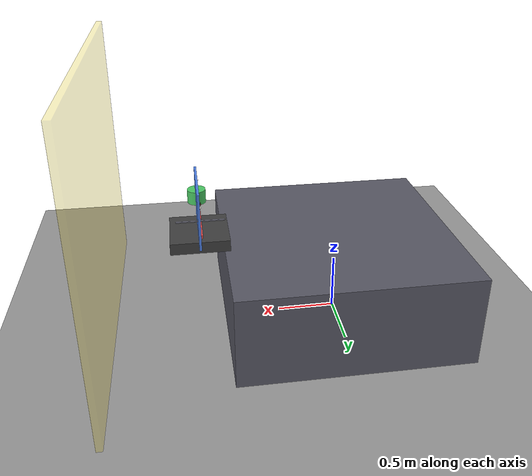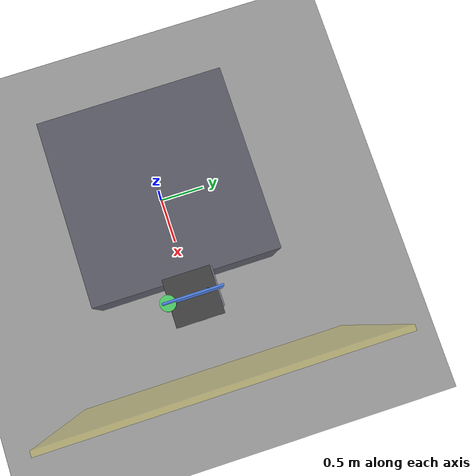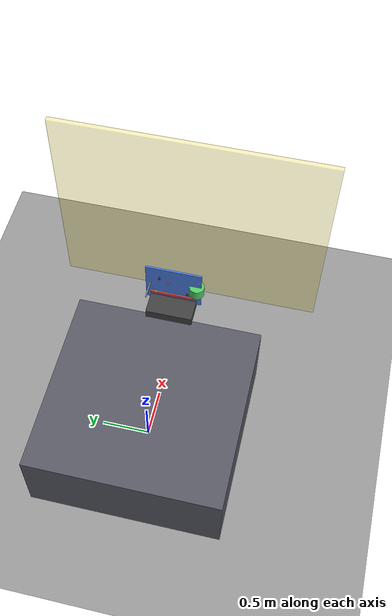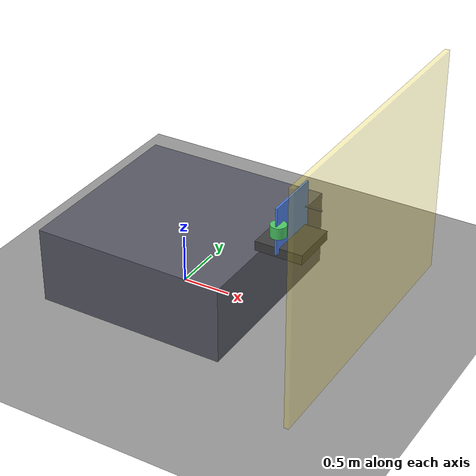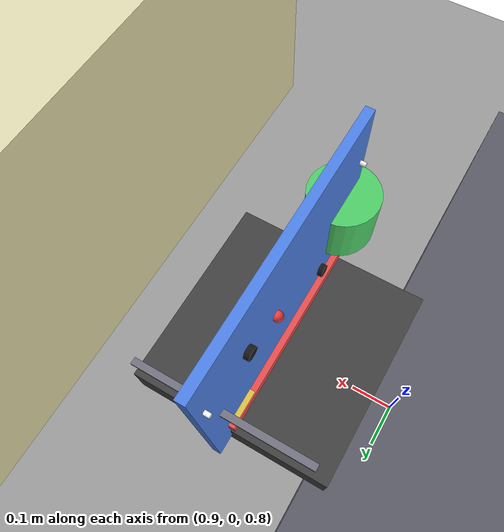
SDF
<?xml version="1.0" ?>
<sdf version="1.8">
  <world name="ros2_inspection_world">

    <!-- ========== PHYSICS & SYSTEM PLUGINS ========== -->
    <physics name="1ms" type="ignored">
      <max_step_size>0.001</max_step_size>
      <real_time_factor>1.0</real_time_factor>
    </physics>

    <plugin filename="gz-sim-physics-system" name="gz::sim::systems::Physics"/>
    <plugin filename="gz-sim-user-commands-system" name="gz::sim::systems::UserCommands"/>
    <plugin filename="gz-sim-scene-broadcaster-system" name="gz::sim::systems::SceneBroadcaster"/>
    <plugin filename="gz-sim-sensors-system" name="gz::sim::systems::Sensors">
      <render_engine>ogre2</render_engine>
    </plugin>
    <plugin filename="gz-sim-contact-system" name="gz::sim::systems::Contact"/>

    <!-- ========== SCENE SETTINGS ========== -->
    <scene>
      <ambient>0.6 0.6 0.6 1.0</ambient>
      <background>0.8 0.8 0.8 1.0</background>
      <shadows>true</shadows>
    </scene>

    <!-- ========== LIGHTING ========== -->

    <!-- Main overhead light -->
    <light type="directional" name="sun">
      <pose>0 0 10 0 0 0</pose>
      <cast_shadows>true</cast_shadows>
      <diffuse>0.9 0.9 0.9 1</diffuse>
      <specular>0.5 0.5 0.5 1</specular>
      <direction>-0.5 0.1 -0.9</direction>
    </light>

    <!-- Work area spotlight -->
    <light type="point" name="work_light_1">
      <pose>1.5 0.5 2.5 0 0 0</pose>
      <diffuse>0.8 0.8 0.8 1</diffuse>
      <specular>0.4 0.4 0.4 1</specular>
      <attenuation>
        <range>8</range>
        <constant>0.2</constant>
        <linear>0.01</linear>
        <quadratic>0.001</quadratic>
      </attenuation>
      <cast_shadows>false</cast_shadows>
    </light>

    <light type="point" name="work_light_2">
      <pose>1.5 -0.5 2.5 0 0 0</pose>
      <diffuse>0.8 0.8 0.8 1</diffuse>
      <specular>0.4 0.4 0.4 1</specular>
      <attenuation>
        <range>8</range>
        <constant>0.2</constant>
        <linear>0.01</linear>
        <quadratic>0.001</quadratic>
      </attenuation>
      <cast_shadows>false</cast_shadows>
    </light>

    <!-- ========== GROUND PLANE ========== -->
    <model name="ground_plane">
      <static>true</static>
      <link name="link">
        <collision name="collision">
          <geometry>
            <plane>
              <normal>0 0 1</normal>
              <size>50 50</size>
            </plane>
          </geometry>
          <surface>
            <friction>
              <ode>
                <mu>100</mu>
                <mu2>50</mu2>
              </ode>
            </friction>
          </surface>
        </collision>
        <visual name="visual">
          <geometry>
            <plane>
              <normal>0 0 1</normal>
              <size>50 50</size>
            </plane>
          </geometry>
          <material>
            <ambient>0.5 0.5 0.5 1</ambient>
            <diffuse>0.6 0.6 0.6 1</diffuse>
            <specular>0.1 0.1 0.1 1</specular>
          </material>
        </visual>
      </link>
    </model>

    <!-- ========== ROBOT WORKBENCH ========== -->
    <model name="workbench">
      <static>true</static>
      <pose>0 0 0.4 0 0 0</pose>
      <link name="table_top">
        <collision name="collision">
          <geometry>
            <box>
              <size>2.0 2.0 0.8</size>
            </box>
          </geometry>
        </collision>
        <visual name="visual">
          <geometry>
            <box>
              <size>2.0 2.0 0.8</size>
            </box>
          </geometry>
          <material>
            <ambient>0.3 0.3 0.35 1</ambient>
            <diffuse>0.35 0.35 0.4 1</diffuse>
            <specular>0.2 0.2 0.2 1</specular>
          </material>
        </visual>
      </link>
    </model>

    <!-- ========== PART FIXTURE ========== -->
    <model name="part_fixture">
      <static>true</static>
      <pose>1.2 0 0.85 0 0 0</pose>
      <link name="fixture_base">
        <collision name="collision">
          <geometry>
            <box>
              <size>0.5 0.5 0.1</size>
            </box>
          </geometry>
        </collision>
        <visual name="visual">
          <geometry>
            <box>
              <size>0.5 0.5 0.1</size>
            </box>
          </geometry>
          <material>
            <ambient>0.2 0.2 0.2 1</ambient>
            <diffuse>0.25 0.25 0.25 1</diffuse>
            <specular>0.3 0.3 0.3 1</specular>
          </material>
        </visual>
      </link>
    </model>

    <!-- ========== MAIN INSPECTION PANEL (BLUE) ========== -->
    <model name="inspection_panel">
      <static>true</static>
      <pose>1.2 0 1.1 0 0 0</pose>
      <link name="panel">
        <collision name="collision">
          <geometry>
            <box>
              <size>0.02 0.6 0.5</size>
            </box>
          </geometry>
        </collision>
        <visual name="visual">
          <geometry>
            <box>
              <size>0.02 0.6 0.5</size>
            </box>
          </geometry>
          <material>
            <ambient>0.2 0.4 0.8 1</ambient>
            <diffuse>0.3 0.5 0.9 1</diffuse>
            <specular>0.6 0.6 0.6 1</specular>
          </material>
        </visual>
      </link>
    </model>

    <!-- ========== HOLE FEATURE 1 (TOP) ========== -->
    <model name="hole_1">
      <static>true</static>
      <pose>1.19 0.15 1.2 0 1.5708 0</pose>
      <link name="hole">
        <collision name="collision">
          <geometry>
            <cylinder>
              <radius>0.015</radius>
              <length>0.025</length>
            </cylinder>
          </geometry>
        </collision>
        <visual name="visual">
          <geometry>
            <cylinder>
              <radius>0.015</radius>
              <length>0.025</length>
            </cylinder>
          </geometry>
          <material>
            <ambient>0.05 0.05 0.05 1</ambient>
            <diffuse>0.1 0.1 0.1 1</diffuse>
            <specular>0.05 0.05 0.05 1</specular>
          </material>
        </visual>
      </link>
    </model>

    <!-- ========== HOLE FEATURE 2 (BOTTOM) ========== -->
    <model name="hole_2">
      <static>true</static>
      <pose>1.19 -0.15 1.0 0 1.5708 0</pose>
      <link name="hole">
        <collision name="collision">
          <geometry>
            <cylinder>
              <radius>0.015</radius>
              <length>0.025</length>
            </cylinder>
          </geometry>
        </collision>
        <visual name="visual">
          <geometry>
            <cylinder>
              <radius>0.015</radius>
              <length>0.025</length>
            </cylinder>
          </geometry>
          <material>
            <ambient>0.05 0.05 0.05 1</ambient>
            <diffuse>0.1 0.1 0.1 1</diffuse>
            <specular>0.05 0.05 0.05 1</specular>
          </material>
        </visual>
      </link>
    </model>

    <!-- ========== RAISED EDGE/RIB (RED) ========== -->
    <model name="raised_rib">
      <static>true</static>
      <pose>1.19 0 0.95 0 0 0</pose>
      <link name="rib">
        <collision name="collision">
          <geometry>
            <box>
              <size>0.03 0.5 0.03</size>
            </box>
          </geometry>
        </collision>
        <visual name="visual">
          <geometry>
            <box>
              <size>0.03 0.5 0.03</size>
            </box>
          </geometry>
          <material>
            <ambient>0.8 0.2 0.2 1</ambient>
            <diffuse>0.9 0.3 0.3 1</diffuse>
            <specular>0.5 0.5 0.5 1</specular>
          </material>
        </visual>
      </link>
    </model>

    <!-- ========== WELDED SEAM (GRAY LINE) ========== -->
    <model name="weld_seam">
      <static>true</static>
      <pose>1.19 0.25 1.1 0 0 1.5708</pose>
      <link name="seam">
        <collision name="collision">
          <geometry>
            <box>
              <size>0.015 0.4 0.008</size>
            </box>
          </geometry>
        </collision>
        <visual name="visual">
          <geometry>
            <box>
              <size>0.015 0.4 0.008</size>
            </box>
          </geometry>
          <material>
            <ambient>0.4 0.4 0.45 1</ambient>
            <diffuse>0.45 0.45 0.5 1</diffuse>
            <specular>0.8 0.8 0.8 1</specular>
          </material>
        </visual>
      </link>
    </model>

    <!-- ========== CURVED SURFACE FEATURE (GREEN) ========== -->
    <model name="curved_section">
      <static>true</static>
      <pose>1.2 -0.25 1.1 0 0 0</pose>
      <link name="curve">
        <collision name="collision">
          <geometry>
            <cylinder>
              <radius>0.08</radius>
              <length>0.12</length>
            </cylinder>
          </geometry>
        </collision>
        <visual name="visual">
          <geometry>
            <cylinder>
              <radius>0.08</radius>
              <length>0.12</length>
            </cylinder>
          </geometry>
          <material>
            <ambient>0.2 0.7 0.3 1</ambient>
            <diffuse>0.3 0.8 0.4 1</diffuse>
            <specular>0.5 0.5 0.5 1</specular>
          </material>
        </visual>
      </link>
    </model>

    <!-- ========== SURFACE DEFECT (SMALL RED BUMP) ========== -->
    <model name="defect_dent">
      <static>true</static>
      <pose>1.185 0.05 1.15 0 1.5708 0</pose>
      <link name="dent">
        <collision name="collision">
          <geometry>
            <sphere>
              <radius>0.012</radius>
            </sphere>
          </geometry>
        </collision>
        <visual name="visual">
          <geometry>
            <sphere>
              <radius>0.012</radius>
            </sphere>
          </geometry>
          <material>
            <ambient>0.9 0.2 0.2 1</ambient>
            <diffuse>0.95 0.25 0.25 1</diffuse>
            <specular>0.4 0.4 0.4 1</specular>
          </material>
        </visual>
      </link>
    </model>

    <!-- ========== COMPLEX GEOMETRY - CORNER BRACKET (YELLOW) ========== -->
    <model name="corner_bracket">
      <static>true</static>
      <pose>1.19 0.2 0.95 0 0 0</pose>
      <link name="bracket_base">
        <collision name="collision">
          <geometry>
            <box>
              <size>0.025 0.08 0.03</size>
            </box>
          </geometry>
        </collision>
        <visual name="visual">
          <geometry>
            <box>
              <size>0.025 0.08 0.03</size>
            </box>
          </geometry>
          <material>
            <ambient>0.8 0.7 0.2 1</ambient>
            <diffuse>0.85 0.75 0.25 1</diffuse>
            <specular>0.6 0.6 0.6 1</specular>
          </material>
        </visual>
      </link>
    </model>

    <!-- ========== REFERENCE CALIBRATION MARKERS ========== -->

    <!-- Marker 1 (Top Left) -->
    <model name="cal_marker_1">
      <static>true</static>
      <pose>1.19 0.28 1.23 0 1.5708 0</pose>
      <link name="marker">
        <visual name="visual">
          <geometry>
            <cylinder>
              <radius>0.005</radius>
              <length>0.025</length>
            </cylinder>
          </geometry>
          <material>
            <ambient>1 1 1 1</ambient>
            <diffuse>1 1 1 1</diffuse>
            <specular>0.8 0.8 0.8 1</specular>
          </material>
        </visual>
      </link>
    </model>

    <!-- Marker 2 (Top Right) -->
    <model name="cal_marker_2">
      <static>true</static>
      <pose>1.19 -0.28 1.23 0 1.5708 0</pose>
      <link name="marker">
        <visual name="visual">
          <geometry>
            <cylinder>
              <radius>0.005</radius>
              <length>0.025</length>
            </cylinder>
          </geometry>
          <material>
            <ambient>1 1 1 1</ambient>
            <diffuse>1 1 1 1</diffuse>
            <specular>0.8 0.8 0.8 1</specular>
          </material>
        </visual>
      </link>
    </model>

    <!-- Marker 3 (Bottom Center) -->
    <model name="cal_marker_3">
      <static>true</static>
      <pose>1.19 0 0.88 0 1.5708 0</pose>
      <link name="marker">
        <visual name="visual">
          <geometry>
            <cylinder>
              <radius>0.005</radius>
              <length>0.025</length>
            </cylinder>
          </geometry>
          <material>
            <ambient>1 1 1 1</ambient>
            <diffuse>1 1 1 1</diffuse>
            <specular>0.8 0.8 0.8 1</specular>
          </material>
        </visual>
      </link>
    </model>

    <!-- ========== WORKSPACE BOUNDARY (OPTIONAL SAFETY) ========== -->
    <model name="safety_barrier">
      <static>true</static>
      <pose>2.0 0 1.2 0 0 0</pose>
      <link name="barrier">
        <visual name="visual">
          <geometry>
            <box>
              <size>0.05 3.0 2.4</size>
            </box>
          </geometry>
          <material>
            <ambient>0.9 0.8 0.1 0.3</ambient>
            <diffuse>0.95 0.85 0.15 0.3</diffuse>
          </material>
          <transparency>0.7</transparency>
        </visual>
      </link>
    </model>

  </world>
</sdf>
